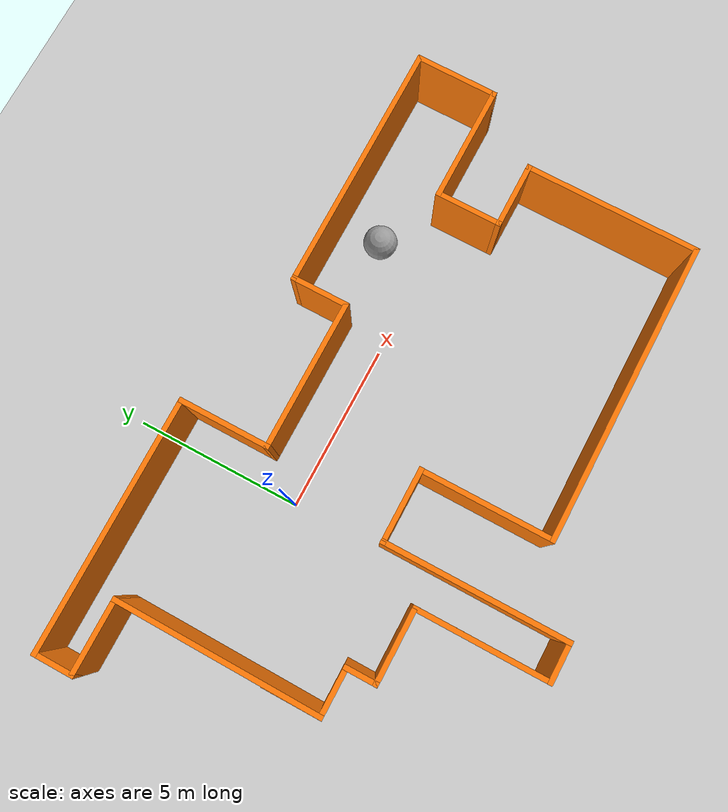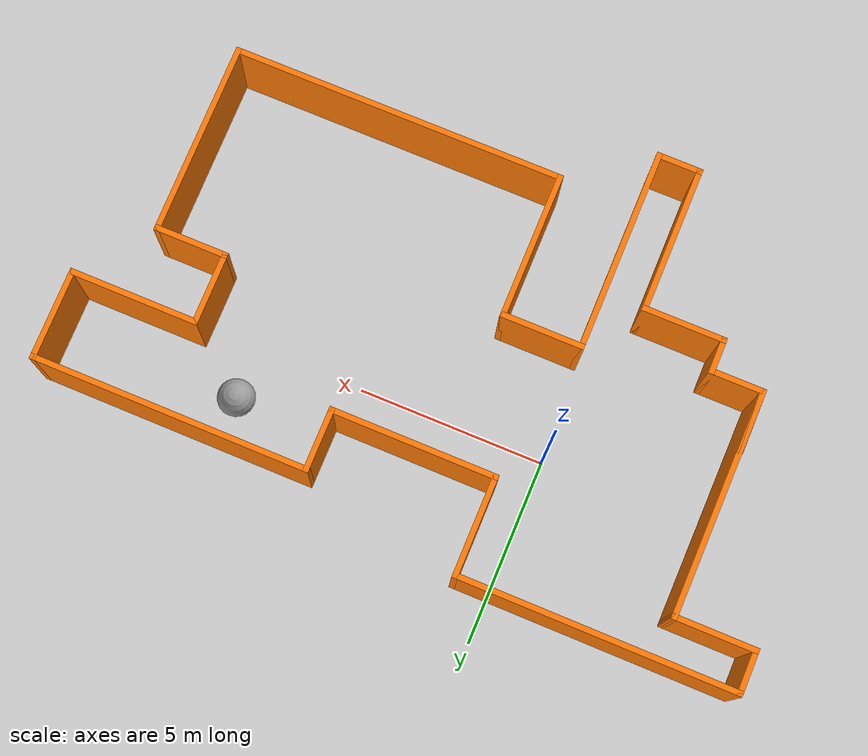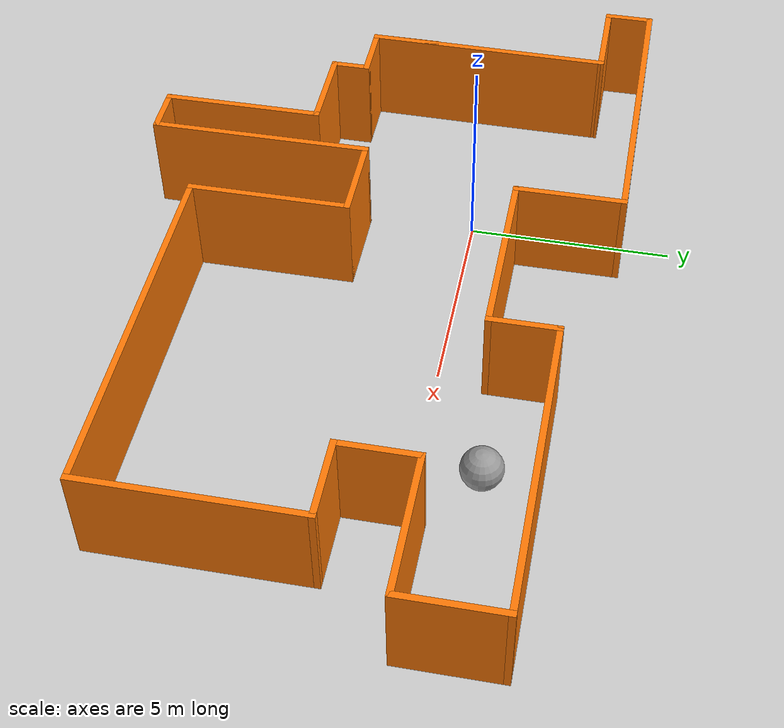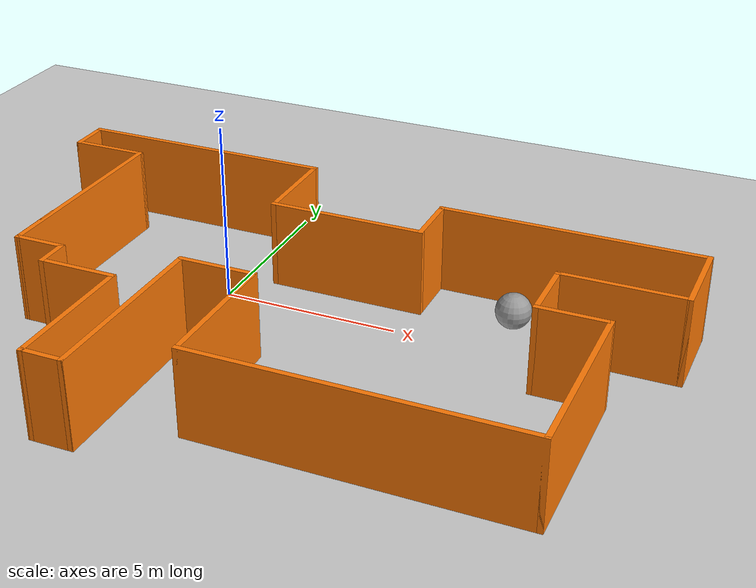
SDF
<sdf version="1.7">
 <world name="default">
  <model name="ground_plane">
   <static>1</static>
   <link name="link">
    <collision name="collision">
     <geometry><plane><normal>0 0 1</normal><size>100 100</size></plane></geometry>
     <surface>
      <contact><collide_bitmask>65535</collide_bitmask></contact>
      <friction><ode><mu>100</mu><mu2>50</mu2></ode></friction>
     </surface>
    </collision>
    <visual name="visual">
     <cast_shadows>0</cast_shadows>
     <geometry><plane><normal>0 0 1</normal><size>100 100</size></plane></geometry>
     <material>
      <script><uri>file://media/materials/scripts/gazebo.material</uri><name>Gazebo/Grey</name></script>
     </material>
    </visual>
   </link>
  </model>
  <model name="myworld">
   <pose>3.095 -2.14 0 0 -0 0</pose>
   <link name="Wall_0">
    <collision name="Wall_0_Collision">
     <geometry><box><size>1.75 0.15 2.5</size></box></geometry>
     <pose>0 0 1.25 0 -0 0</pose>
    </collision>
    <visual name="Wall_0_Visual">
     <pose>0 0 1.25 0 -0 0</pose>
     <geometry><box><size>1.75 0.15 2.5</size></box></geometry>
     <material>
      <script><uri>file://media/materials/scripts/gazebo.material</uri><name>Gazebo/Grey</name></script>
      <ambient>0.996078 0.47451 0.0196078 1</ambient>
     </material>
     <meta><layer>0</layer></meta>
    </visual>
    <pose>-7.475 -0.4 0 0 -0 -1.5708</pose>
   </link>
   <link name="Wall_1">
    <collision name="Wall_1_Collision">
     <geometry><box><size>1.5 0.15 2.5</size></box></geometry>
     <pose>0 0 1.25 0 -0 0</pose>
    </collision>
    <visual name="Wall_1_Visual">
     <pose>0 0 1.25 0 -0 0</pose>
     <geometry><box><size>1.5 0.15 2.5</size></box></geometry>
     <material>
      <script><uri>file://media/materials/scripts/gazebo.material</uri><name>Gazebo/Grey</name></script>
      <ambient>0.996078 0.47451 0.0196078 1</ambient>
     </material>
     <meta><layer>0</layer></meta>
    </visual>
    <pose>-6.8 -1.2 0 0 -0 0</pose>
   </link>
   <link name="Wall_10">
    <collision name="Wall_10_Collision">
     <geometry><box><size>5.25 0.15 2.5</size></box></geometry>
     <pose>0 0 1.25 0 -0 0</pose>
    </collision>
    <visual name="Wall_10_Visual">
     <pose>0 0 1.25 0 -0 0</pose>
     <geometry><box><size>5.25 0.15 2.5</size></box></geometry>
     <material>
      <script><uri>file://media/materials/scripts/gazebo.material</uri><name>Gazebo/Grey</name></script>
      <ambient>0.996078 0.47451 0.0196078 1</ambient>
     </material>
     <meta><layer>0</layer></meta>
    </visual>
    <pose>8.025 -1.85 0 0 -0 1.5708</pose>
   </link>
   <link name="Wall_11">
    <collision name="Wall_11_Collision">
     <geometry><box><size>2 0.15 2.5</size></box></geometry>
     <pose>0 0 1.25 0 -0 0</pose>
    </collision>
    <visual name="Wall_11_Visual">
     <pose>0 0 1.25 0 -0 0</pose>
     <geometry><box><size>2 0.15 2.5</size></box></geometry>
     <material>
      <script><uri>file://media/materials/scripts/gazebo.material</uri><name>Gazebo/Grey</name></script>
      <ambient>0.996078 0.47451 0.0196078 1</ambient>
     </material>
     <meta><layer>0</layer></meta>
    </visual>
    <pose>7.1 0.7 0 0 -0 3.14159</pose>
   </link>
   <link name="Wall_12">
    <collision name="Wall_12_Collision">
     <geometry><box><size>2 0.15 2.5</size></box></geometry>
     <pose>0 0 1.25 0 -0 0</pose>
    </collision>
    <visual name="Wall_12_Visual">
     <pose>0 0 1.25 0 -0 0</pose>
     <geometry><box><size>2 0.15 2.5</size></box></geometry>
     <material>
      <script><uri>file://media/materials/scripts/gazebo.material</uri><name>Gazebo/Grey</name></script>
      <ambient>0.996078 0.47451 0.0196078 1</ambient>
     </material>
     <meta><layer>0</layer></meta>
    </visual>
    <pose>6.175 1.625 0 0 -0 1.5708</pose>
   </link>
   <link name="Wall_13">
    <collision name="Wall_13_Collision">
     <geometry><box><size>3.5 0.15 2.5</size></box></geometry>
     <pose>0 0 1.25 0 -0 0</pose>
    </collision>
    <visual name="Wall_13_Visual">
     <pose>0 0 1.25 0 -0 0</pose>
     <geometry><box><size>3.5 0.15 2.5</size></box></geometry>
     <material>
      <script><uri>file://media/materials/scripts/gazebo.material</uri><name>Gazebo/Grey</name></script>
      <ambient>0.996078 0.47451 0.0196078 1</ambient>
     </material>
     <meta><layer>0</layer></meta>
    </visual>
    <pose>7.85 2.55 0 0 -0 0</pose>
   </link>
   <link name="Wall_14">
    <collision name="Wall_14_Collision">
     <geometry><box><size>2.5 0.15 2.5</size></box></geometry>
     <pose>0 0 1.25 0 -0 0</pose>
    </collision>
    <visual name="Wall_14_Visual">
     <pose>0 0 1.25 0 -0 0</pose>
     <geometry><box><size>2.5 0.15 2.5</size></box></geometry>
     <material>
      <script><uri>file://media/materials/scripts/gazebo.material</uri><name>Gazebo/Grey</name></script>
      <ambient>0.996078 0.47451 0.0196078 1</ambient>
     </material>
     <meta><layer>0</layer></meta>
    </visual>
    <pose>9.525 3.725 0 0 -0 1.5708</pose>
   </link>
   <link name="Wall_15">
    <collision name="Wall_15_Collision">
     <geometry><box><size>7.5 0.15 2.5</size></box></geometry>
     <pose>0 0 1.25 0 -0 0</pose>
    </collision>
    <visual name="Wall_15_Visual">
     <pose>0 0 1.25 0 -0 0</pose>
     <geometry><box><size>7.5 0.15 2.5</size></box></geometry>
     <material>
      <script><uri>file://media/materials/scripts/gazebo.material</uri><name>Gazebo/Grey</name></script>
      <ambient>0.996078 0.47451 0.0196078 1</ambient>
     </material>
     <meta><layer>0</layer></meta>
    </visual>
    <pose>5.85 4.9 0 0 -0 3.14159</pose>
   </link>
   <link name="Wall_16">
    <collision name="Wall_16_Collision">
     <geometry><box><size>1.75 0.15 2.5</size></box></geometry>
     <pose>0 0 1.25 0 -0 0</pose>
    </collision>
    <visual name="Wall_16_Visual">
     <pose>0 0 1.25 0 -0 0</pose>
     <geometry><box><size>1.75 0.15 2.5</size></box></geometry>
     <material>
      <script><uri>file://media/materials/scripts/gazebo.material</uri><name>Gazebo/Grey</name></script>
      <ambient>0.996078 0.47451 0.0196078 1</ambient>
     </material>
     <meta><layer>0</layer></meta>
    </visual>
    <pose>2.175 4.1 0 0 -0 -1.5708</pose>
   </link>
   <link name="Wall_17">
    <collision name="Wall_17_Collision">
     <geometry><box><size>4.5 0.15 2.5</size></box></geometry>
     <pose>0 0 1.25 0 -0 0</pose>
    </collision>
    <visual name="Wall_17_Visual">
     <pose>0 0 1.25 0 -0 0</pose>
     <geometry><box><size>4.5 0.15 2.5</size></box></geometry>
     <material>
      <script><uri>file://media/materials/scripts/gazebo.material</uri><name>Gazebo/Grey</name></script>
      <ambient>0.996078 0.47451 0.0196078 1</ambient>
     </material>
     <meta><layer>0</layer></meta>
    </visual>
    <pose>0 3.3 0 0 -0 3.14159</pose>
   </link>
   <link name="Wall_2">
    <collision name="Wall_2_Collision">
     <geometry><box><size>1 0.15 2.5</size></box></geometry>
     <pose>0 0 1.25 0 -0 0</pose>
    </collision>
    <visual name="Wall_2_Visual">
     <pose>0 0 1.25 0 -0 0</pose>
     <geometry><box><size>1 0.15 2.5</size></box></geometry>
     <material>
      <script><uri>file://media/materials/scripts/gazebo.material</uri><name>Gazebo/Grey</name></script>
      <ambient>0.996078 0.47451 0.0196078 1</ambient>
     </material>
     <meta><layer>0</layer></meta>
    </visual>
    <pose>-6.125 -1.625 0 0 -0 -1.5708</pose>
   </link>
   <link name="Wall_20">
    <collision name="Wall_20_Collision">
     <geometry><box><size>2.75 0.15 2.5</size></box></geometry>
     <pose>0 0 1.25 0 -0 0</pose>
    </collision>
    <visual name="Wall_20_Visual">
     <pose>0 0 1.25 0 -0 0</pose>
     <geometry><box><size>2.75 0.15 2.5</size></box></geometry>
     <material>
      <script><uri>file://media/materials/scripts/gazebo.material</uri><name>Gazebo/Grey</name></script>
      <ambient>0.996078 0.47451 0.0196078 1</ambient>
     </material>
     <meta><layer>0</layer></meta>
    </visual>
    <pose>-2.175 4.6 0 0 -0 1.5708</pose>
   </link>
   <link name="Wall_21">
    <collision name="Wall_21_Collision">
     <geometry><box><size>7.5 0.15 2.5</size></box></geometry>
     <pose>0 0 1.25 0 -0 0</pose>
    </collision>
    <visual name="Wall_21_Visual">
     <pose>0 0 1.25 0 -0 0</pose>
     <geometry><box><size>7.5 0.15 2.5</size></box></geometry>
     <material>
      <script><uri>file://media/materials/scripts/gazebo.material</uri><name>Gazebo/Grey</name></script>
      <ambient>0.996078 0.47451 0.0196078 1</ambient>
     </material>
     <meta><layer>0</layer></meta>
    </visual>
    <pose>-5.85 5.9 0 0 -0 3.14159</pose>
   </link>
   <link name="Wall_22">
    <collision name="Wall_22_Collision">
     <geometry><box><size>1.25 0.15 2.5</size></box></geometry>
     <pose>0 0 1.25 0 -0 0</pose>
    </collision>
    <visual name="Wall_22_Visual">
     <pose>0 0 1.25 0 -0 0</pose>
     <geometry><box><size>1.25 0.15 2.5</size></box></geometry>
     <material>
      <script><uri>file://media/materials/scripts/gazebo.material</uri><name>Gazebo/Grey</name></script>
      <ambient>0.996078 0.47451 0.0196078 1</ambient>
     </material>
     <meta><layer>0</layer></meta>
    </visual>
    <pose>-9.525 5.35 0 0 -0 -1.5708</pose>
   </link>
   <link name="Wall_23">
    <collision name="Wall_23_Collision">
     <geometry><box><size>2.25 0.15 2.5</size></box></geometry>
     <pose>0 0 1.25 0 -0 0</pose>
    </collision>
    <visual name="Wall_23_Visual">
     <pose>0 0 1.25 0 -0 0</pose>
     <geometry><box><size>2.25 0.15 2.5</size></box></geometry>
     <material>
      <script><uri>file://media/materials/scripts/gazebo.material</uri><name>Gazebo/Grey</name></script>
      <ambient>0.996078 0.47451 0.0196078 1</ambient>
     </material>
     <meta><layer>0</layer></meta>
    </visual>
    <pose>-8.475 4.8 0 0 -0 0</pose>
   </link>
   <link name="Wall_24">
    <collision name="Wall_24_Collision">
     <geometry><box><size>6.15021 0.15 2.5</size></box></geometry>
     <pose>0 0 1.25 0 -0 0</pose>
    </collision>
    <visual name="Wall_24_Visual">
     <pose>0 0 1.25 0 -0 0</pose>
     <geometry><box><size>6.15021 0.15 2.5</size></box></geometry>
     <material>
      <script><uri>file://media/materials/scripts/gazebo.material</uri><name>Gazebo/Grey</name></script>
      <ambient>0.996078 0.47451 0.0196078 1</ambient>
     </material>
     <meta><layer>0</layer></meta>
    </visual>
    <pose>-7.45 1.8 0 0 -0 -1.57913</pose>
   </link>
   <link name="Wall_3">
    <collision name="Wall_3_Collision">
     <geometry><box><size>2.25 0.15 2.5</size></box></geometry>
     <pose>0 0 1.25 0 -0 0</pose>
    </collision>
    <visual name="Wall_3_Visual">
     <pose>0 0 1.25 0 -0 0</pose>
     <geometry><box><size>2.25 0.15 2.5</size></box></geometry>
     <material>
      <script><uri>file://media/materials/scripts/gazebo.material</uri><name>Gazebo/Grey</name></script>
      <ambient>0.996078 0.47451 0.0196078 1</ambient>
     </material>
     <meta><layer>0</layer></meta>
    </visual>
    <pose>-5.075 -2.05 0 0 -0 0</pose>
   </link>
   <link name="Wall_4">
    <collision name="Wall_4_Collision">
     <geometry><box><size>4 0.15 2.5</size></box></geometry>
     <pose>0 0 1.25 0 -0 0</pose>
    </collision>
    <visual name="Wall_4_Visual">
     <pose>0 0 1.25 0 -0 0</pose>
     <geometry><box><size>4 0.15 2.5</size></box></geometry>
     <material>
      <script><uri>file://media/materials/scripts/gazebo.material</uri><name>Gazebo/Grey</name></script>
      <ambient>0.996078 0.47451 0.0196078 1</ambient>
     </material>
     <meta><layer>0</layer></meta>
    </visual>
    <pose>-4.025 -3.975 0 0 -0 -1.5708</pose>
   </link>
   <link name="Wall_5">
    <collision name="Wall_5_Collision">
     <geometry><box><size>1.25 0.15 2.5</size></box></geometry>
     <pose>0 0 1.25 0 -0 0</pose>
    </collision>
    <visual name="Wall_5_Visual">
     <pose>0 0 1.25 0 -0 0</pose>
     <geometry><box><size>1.25 0.15 2.5</size></box></geometry>
     <material>
      <script><uri>file://media/materials/scripts/gazebo.material</uri><name>Gazebo/Grey</name></script>
      <ambient>0.996078 0.47451 0.0196078 1</ambient>
     </material>
     <meta><layer>0</layer></meta>
    </visual>
    <pose>-3.475 -5.9 0 0 -0 0</pose>
   </link>
   <link name="Wall_6">
    <collision name="Wall_6_Collision">
     <geometry><box><size>5.5 0.15 2.5</size></box></geometry>
     <pose>0 0 1.25 0 -0 0</pose>
    </collision>
    <visual name="Wall_6_Visual">
     <pose>0 0 1.25 0 -0 0</pose>
     <geometry><box><size>5.5 0.15 2.5</size></box></geometry>
     <material>
      <script><uri>file://media/materials/scripts/gazebo.material</uri><name>Gazebo/Grey</name></script>
      <ambient>0.996078 0.47451 0.0196078 1</ambient>
     </material>
     <meta><layer>0</layer></meta>
    </visual>
    <pose>-2.925 -3.225 0 0 -0 1.5708</pose>
   </link>
   <link name="Wall_7">
    <collision name="Wall_7_Collision">
     <geometry><box><size>2.25 0.15 2.5</size></box></geometry>
     <pose>0 0 1.25 0 -0 0</pose>
    </collision>
    <visual name="Wall_7_Visual">
     <pose>0 0 1.25 0 -0 0</pose>
     <geometry><box><size>2.25 0.15 2.5</size></box></geometry>
     <material>
      <script><uri>file://media/materials/scripts/gazebo.material</uri><name>Gazebo/Grey</name></script>
      <ambient>0.996078 0.47451 0.0196078 1</ambient>
     </material>
     <meta><layer>0</layer></meta>
    </visual>
    <pose>-1.875 -0.55 0 0 -0 0</pose>
   </link>
   <link name="Wall_8">
    <collision name="Wall_8_Collision">
     <geometry><box><size>4 0.15 2.5</size></box></geometry>
     <pose>0 0 1.25 0 -0 0</pose>
    </collision>
    <visual name="Wall_8_Visual">
     <pose>0 0 1.25 0 -0 0</pose>
     <geometry><box><size>4 0.15 2.5</size></box></geometry>
     <material>
      <script><uri>file://media/materials/scripts/gazebo.material</uri><name>Gazebo/Grey</name></script>
      <ambient>0.996078 0.47451 0.0196078 1</ambient>
     </material>
     <meta><layer>0</layer></meta>
    </visual>
    <pose>-0.825 -2.475 0 0 -0 -1.5708</pose>
   </link>
   <link name="Wall_9">
    <collision name="Wall_9_Collision">
     <geometry><box><size>9 0.15 2.5</size></box></geometry>
     <pose>0 0 1.25 0 -0 0</pose>
    </collision>
    <visual name="Wall_9_Visual">
     <pose>0 0 1.25 0 -0 0</pose>
     <geometry><box><size>9 0.15 2.5</size></box></geometry>
     <material>
      <script><uri>file://media/materials/scripts/gazebo.material</uri><name>Gazebo/Grey</name></script>
      <ambient>0.996078 0.47451 0.0196078 1</ambient>
     </material>
     <meta><layer>0</layer></meta>
    </visual>
    <pose>3.6 -4.4 0 0 -0 0</pose>
   </link>
   <static>1</static>
  </model>
  <model name="unit_sphere">
   <pose>7.85827 1.48333 0.5 0 -0 0</pose>
   <link name="link">
    <inertial>
     <mass>1</mass>
     <inertia><ixx>0.1</ixx><ixy>0</ixy><ixz>0</ixz><iyy>0.1</iyy><iyz>0</iyz><izz>0.1</izz></inertia>
    </inertial>
    <collision name="collision"><geometry><sphere><radius>0.5</radius></sphere></geometry></collision>
    <visual name="visual">
     <geometry><sphere><radius>0.5</radius></sphere></geometry>
     <material>
      <script><name>Gazebo/Grey</name><uri>file://media/materials/scripts/gazebo.material</uri></script>
     </material>
    </visual>
   </link>
  </model>
 </world>
</sdf>
